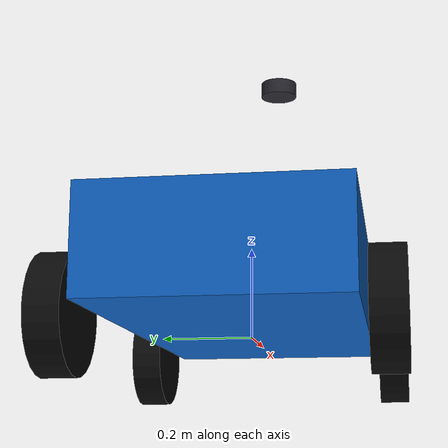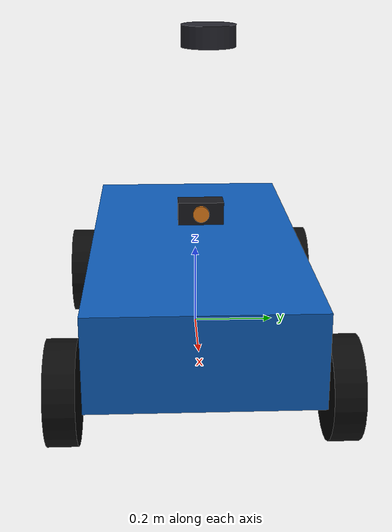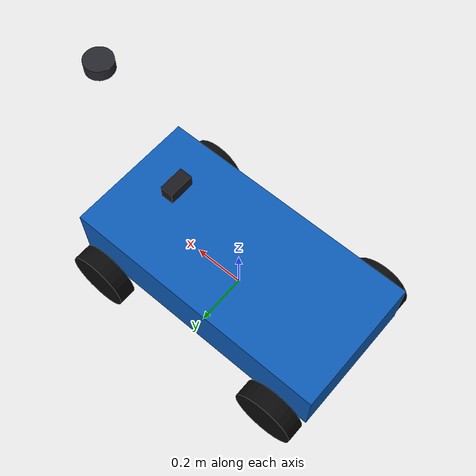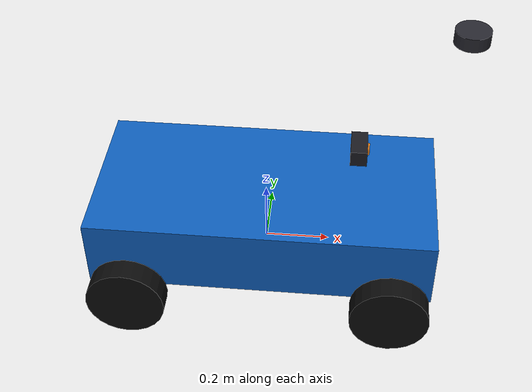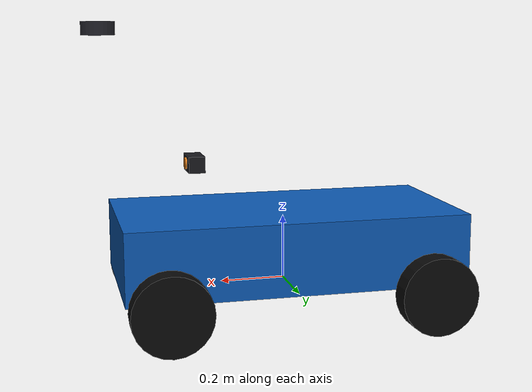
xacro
<?xml version="1.0"?>
<robot xmlns:xacro="http://www.ros.org/wiki/xacro" name="course_ackermann">

  <!-- ===== База (из SDF base_link) ===== -->
  <xacro:property name="base_length" value="1.05"/>
  <xacro:property name="base_width" value="0.52"/>
  <xacro:property name="base_height" value="0.22"/>
  <xacro:property name="base_mass" value="12.0"/>
  <xacro:property name="body_z" value="0.12"/>
  <xacro:property name="base_ixx" value="0.55"/>
  <xacro:property name="base_iyy" value="1.10"/>
  <xacro:property name="base_izz" value="1.40"/>

  <!-- ===== Ходовая (из SDF plugin wheel_base/wheel_separation/wheel_radius) ===== -->
  <xacro:property name="wheel_base" value="0.80"/>
  <xacro:property name="track" value="0.62"/>
  <xacro:property name="wheel_radius" value="0.12"/>
  <xacro:property name="wheel_width" value="0.07"/>
  <xacro:property name="wheel_mass" value="0.8"/>
  <xacro:property name="wheel_ixx" value="0.006"/>
  <xacro:property name="wheel_iyy" value="0.003"/>
  <xacro:property name="wheel_izz" value="0.006"/>
  <xacro:property name="knuckle_mass" value="0.2"/>
  <xacro:property name="knuckle_inertia" value="0.001"/>

  <xacro:property name="front_x" value="${wheel_base / 2.0}"/>
  <xacro:property name="rear_x" value="${-wheel_base / 2.0}"/>
  <xacro:property name="side_y" value="${track / 2.0}"/>

  <!-- ===== Сенсоры (из SDF: все три в одной pose) ===== -->
  <xacro:property name="sensor_x" value="0.28"/>
  <xacro:property name="sensor_z" value="0.38"/>
  <xacro:property name="sensor_mass" value="0.033333333333"/>
  <xacro:property name="sensor_inertia" value="0.000333333333"/>

  <material name="body_blue"><color rgba="0.05 0.36 0.72 1.0"/></material>
  <material name="wheel_black"><color rgba="0.04 0.04 0.04 1.0"/></material>
  <material name="knuckle_gray"><color rgba="0.45 0.45 0.45 1.0"/></material>
  <material name="lidar_dark"><color rgba="0.15 0.15 0.18 1.0"/></material>
  <material name="camera_body"><color rgba="0.10 0.10 0.12 1.0"/></material>
  <material name="camera_lens"><color rgba="0.90 0.50 0.10 1.0"/></material>
  <material name="imu_green"><color rgba="0.10 0.60 0.25 1.0"/></material>

  <!-- ===== base_link ===== -->
  <link name="base_link">
    <visual>
      <origin xyz="0.0 0.0 ${body_z}" rpy="0.0 0.0 0.0"/>
      <geometry><box size="${base_length} ${base_width} ${base_height}"/></geometry>
      <material name="body_blue"/>
    </visual>
    <collision>
      <origin xyz="0.0 0.0 ${body_z}" rpy="0.0 0.0 0.0"/>
      <geometry><box size="${base_length} ${base_width} ${base_height}"/></geometry>
    </collision>
    <inertial>
      <origin xyz="0.0 0.0 0.0" rpy="0.0 0.0 0.0"/>
      <mass value="${base_mass}"/>
      <inertia ixx="${base_ixx}" ixy="0.0" ixz="0.0"
               iyy="${base_iyy}" iyz="0.0" izz="${base_izz}"/>
    </inertial>
  </link>

  <!-- ===== Макрос колеса: цилиндр, ось вдоль Y (rpy pi/2 вокруг X, как в SDF) ===== -->
  <xacro:macro name="wheel" params="name parent px py">
    <link name="${name}">
      <visual>
        <origin xyz="0.0 0.0 0.0" rpy="1.5708 0.0 0.0"/>
        <geometry><cylinder radius="${wheel_radius}" length="${wheel_width}"/></geometry>
        <material name="wheel_black"/>
      </visual>
      <collision>
        <origin xyz="0.0 0.0 0.0" rpy="1.5708 0.0 0.0"/>
        <geometry><cylinder radius="${wheel_radius}" length="${wheel_width}"/></geometry>
      </collision>
      <inertial>
        <origin xyz="0.0 0.0 0.0" rpy="1.5708 0.0 0.0"/>
        <mass value="${wheel_mass}"/>
        <inertia ixx="${wheel_ixx}" ixy="0.0" ixz="0.0"
                 iyy="${wheel_iyy}" iyz="0.0" izz="${wheel_izz}"/>
      </inertial>
    </link>
    <joint name="${parent}_to_${name}" type="fixed">
      <parent link="${parent}"/>
      <child link="${name}"/>
      <origin xyz="${px} ${py} 0.0" rpy="0.0 0.0 0.0"/>
    </joint>
  </xacro:macro>

  <!-- ===== Макрос рулевого кулачка: видимая стойка, к ней крепится переднее колесо ===== -->
  <xacro:macro name="knuckle" params="name px py">
    <link name="${name}">
      <visual>
        <origin xyz="0.0 0.0 0.0" rpy="0.0 0.0 0.0"/>
        <geometry><box size="0.04 0.04 0.16"/></geometry>
        <material name="knuckle_gray"/>
      </visual>
      <inertial>
        <origin xyz="0.0 0.0 0.0" rpy="0.0 0.0 0.0"/>
        <mass value="${knuckle_mass}"/>
        <inertia ixx="${knuckle_inertia}" ixy="0.0" ixz="0.0"
                 iyy="${knuckle_inertia}" iyz="0.0" izz="${knuckle_inertia}"/>
      </inertial>
    </link>
    <joint name="base_to_${name}" type="fixed">
      <parent link="base_link"/>
      <child link="${name}"/>
      <origin xyz="${px} ${py} 0.0" rpy="0.0 0.0 0.0"/>
    </joint>
  </xacro:macro>

  <!-- Кулачки (передние) -->
  <xacro:knuckle name="front_left_knuckle" px="${front_x}" py="${side_y}"/>
  <xacro:knuckle name="front_right_knuckle" px="${front_x}" py="${-side_y}"/>

  <!-- Колёса: передние через кулачок, задние напрямую на базу (как в SDF) -->
  <xacro:wheel name="front_left_wheel" parent="front_left_knuckle" px="0.0" py="0.0"/>
  <xacro:wheel name="front_right_wheel" parent="front_right_knuckle" px="0.0" py="0.0"/>
  <xacro:wheel name="rear_left_wheel" parent="base_link" px="${rear_x}" py="${side_y}"/>
  <xacro:wheel name="rear_right_wheel" parent="base_link" px="${rear_x}" py="${-side_y}"/>

  <!-- ===== Сенсоры: frame всех трёх в 0.28 0 0.38 (как SDF), а visual разведён
       по высоте внутри link, чтобы в RViz читались три устройства, а не один куб ===== -->
  <link name="lidar_link">
    <visual>
      <origin xyz="0.0 0.0 0.03" rpy="0.0 0.0 0.0"/>
      <geometry><cylinder radius="0.05" length="0.04"/></geometry>
      <material name="lidar_dark"/>
    </visual>
    <inertial>
      <origin xyz="0.0 0.0 0.0" rpy="0.0 0.0 0.0"/>
      <mass value="${sensor_mass}"/>
      <inertia ixx="${sensor_inertia}" ixy="0.0" ixz="0.0"
               iyy="${sensor_inertia}" iyz="0.0" izz="${sensor_inertia}"/>
    </inertial>
  </link>
  <joint name="base_to_lidar" type="fixed">
    <parent link="camera_link"/><child link="lidar_link"/>
    <origin xyz="${sensor_x} 0.0 ${sensor_z}" rpy="0.0 0.0 0.0"/>
  </joint>

  <link name="camera_link">
    <visual>
      <origin xyz="0.0 0.0 0.0" rpy="0.0 0.0 0.0"/>
      <geometry><box size="0.05 0.10 0.05"/></geometry>
      <material name="camera_body"/>
    </visual>
    <visual>
      <origin xyz="0.028 0.0 0.0" rpy="0.0 1.5708 0.0"/>
      <geometry><cylinder radius="0.018" length="0.006"/></geometry>
      <material name="camera_lens"/>
    </visual>
    <inertial>
      <origin xyz="0.0 0.0 0.0" rpy="0.0 0.0 0.0"/>
      <mass value="${sensor_mass}"/>
      <inertia ixx="${sensor_inertia}" ixy="0.0" ixz="0.0"
               iyy="${sensor_inertia}" iyz="0.0" izz="${sensor_inertia}"/>
    </inertial>
  </link>
  <joint name="base_to_camera" type="fixed">
    <parent link="base_link"/><child link="camera_link"/>
    <origin xyz="${sensor_x} 0.0 ${sensor_z}" rpy="0.0 0.0 0.0"/>
  </joint>

  <link name="imu_link">
    <visual>
      <origin xyz="0.0 0.0 -0.02" rpy="0.0 0.0 0.0"/>
      <geometry><box size="0.03 0.03 0.01"/></geometry>
      <material name="imu_green"/>
    </visual>
    <inertial>
      <origin xyz="0.0 0.0 0.0" rpy="0.0 0.0 0.0"/>
      <mass value="${sensor_mass}"/>
      <inertia ixx="${sensor_inertia}" ixy="0.0" ixz="0.0"
               iyy="${sensor_inertia}" iyz="0.0" izz="${sensor_inertia}"/>
    </inertial>
  </link>
  <joint name="base_to_imu" type="fixed">
    <parent link="base_link"/><child link="imu_link"/>
    <origin xyz="${sensor_x} 0.0 ${sensor_z}" rpy="0.0 0.0 0.0"/>
  </joint>

</robot>
